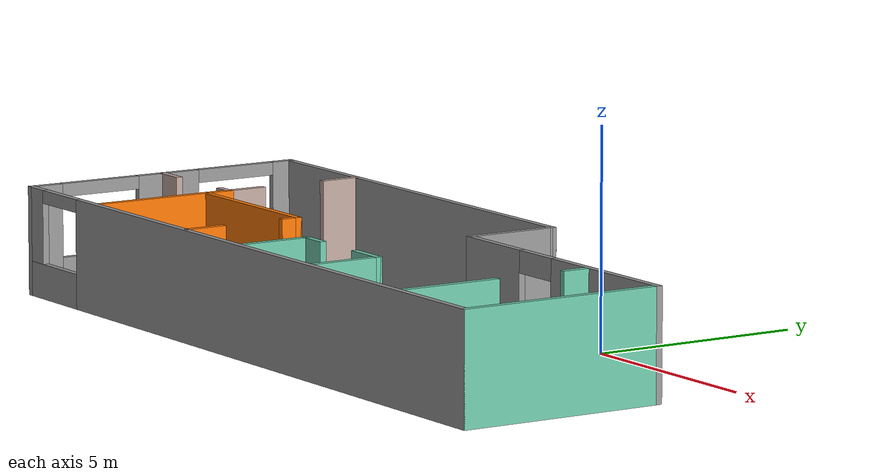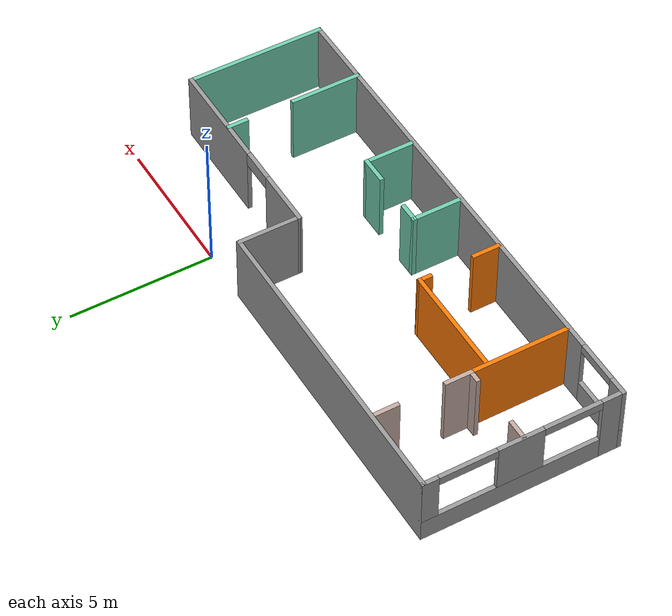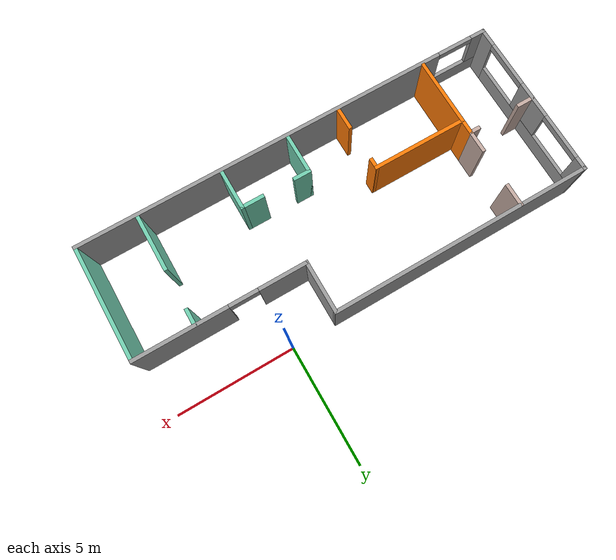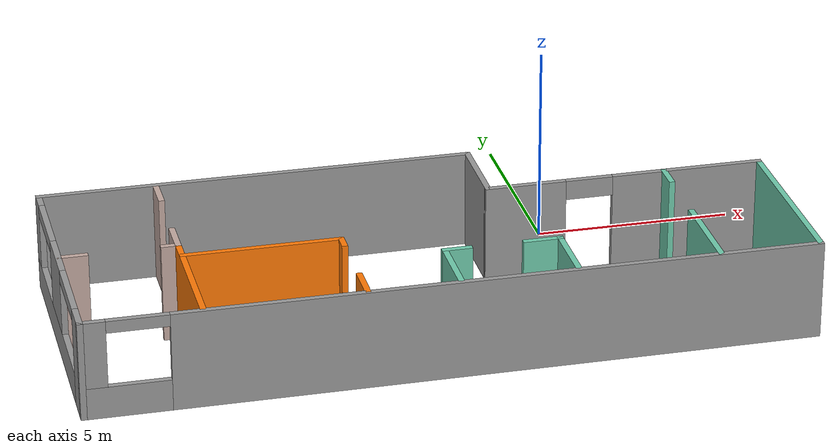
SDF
<?xml version='1.0'?>
<sdf version='1.6'>
  <model name='Building'>
    <pose frame=''>-3.82355 -3.43652 0 0 -0 0</pose>
    <link name='Wall_12'>
      <collision name='Wall_12_Collision'>
        <geometry>
          <box>
            <size>3.5 0.15 2.5</size>
          </box>
        </geometry>
        <pose frame=''>0 0 1.25 0 -0 0</pose>
      </collision>
      <visual name='Wall_12_Visual'>
        <pose frame=''>0 0 1.25 0 -0 0</pose>
        <geometry>
          <box>
            <size>3.5 0.15 2.5</size>
          </box>
        </geometry>
        <material>
          <script>
            <uri>file://media/materials/scripts/gazebo.material</uri>
            <name>Gazebo/Grey</name>
          </script>
          <ambient>0.996078 0.47451 0.0196078 1</ambient>
        </material>
        <meta>
          <layer>0</layer>
        </meta>
      </visual>
      <pose frame=''>-6.04441 -1.64552 0 0 0 -1.5708</pose>
    </link>
    <link name='Wall_16'>
      <collision name='Wall_16_Collision'>
        <geometry>
          <box>
            <size>11 0.15 2.5</size>
          </box>
        </geometry>
        <pose frame=''>0 0 1.25 0 -0 0</pose>
      </collision>
      <visual name='Wall_16_Visual'>
        <pose frame=''>0 0 1.25 0 -0 0</pose>
        <geometry>
          <box>
            <size>11 0.15 2.5</size>
          </box>
        </geometry>
        <material>
          <script>
            <uri>file://media/materials/scripts/gazebo.material</uri>
            <name>Gazebo/Grey</name>
          </script>
          <ambient>0.462745 0.490196 0.45098 1</ambient>
        </material>
        <meta>
          <layer>0</layer>
        </meta>
      </visual>
      <pose frame=''>-3.5 3.425 0 0 -0 0</pose>
    </link>
    <link name='Wall_17'>
      <collision name='Wall_17_Collision'>
        <geometry>
          <box>
            <size>2.25 0.15 2.5</size>
          </box>
        </geometry>
        <pose frame=''>0 0 1.25 0 -0 0</pose>
      </collision>
      <visual name='Wall_17_Visual'>
        <pose frame=''>0 0 1.25 0 -0 0</pose>
        <geometry>
          <box>
            <size>2.25 0.15 2.5</size>
          </box>
        </geometry>
        <material>
          <script>
            <uri>file://media/materials/scripts/gazebo.material</uri>
            <name>Gazebo/Grey</name>
          </script>
          <ambient>0.462745 0.490196 0.45098 1</ambient>
        </material>
        <meta>
          <layer>0</layer>
        </meta>
      </visual>
      <pose frame=''>1.92477 2.37476 0 0 0 -1.57101</pose>
    </link>
    <link name='Wall_18'>
      <pose frame=''>5.42455 1.32452 0 0 -0 0</pose>
      <visual name='Wall_18_Visual_0'>
        <pose frame=''>-2.54562 0 1.25 0 -0 0</pose>
        <geometry>
          <box>
            <size>2.05876 0.15 2.5</size>
          </box>
        </geometry>
        <material>
          <script>
            <uri>file://media/materials/scripts/gazebo.material</uri>
            <name>Gazebo/Grey</name>
          </script>
          <ambient>0.462745 0.490196 0.45098 1</ambient>
        </material>
        <meta>
          <layer>0</layer>
        </meta>
      </visual>
      <collision name='Wall_18_Collision_0'>
        <geometry>
          <box>
            <size>2.05876 0.15 2.5</size>
          </box>
        </geometry>
        <pose frame=''>-2.54562 0 1.25 0 -0 0</pose>
      </collision>
      <visual name='Wall_18_Visual_1'>
        <pose frame=''>1.62938 0 1.25 0 -0 0</pose>
        <geometry>
          <box>
            <size>3.89124 0.15 2.5</size>
          </box>
        </geometry>
        <material>
          <script>
            <uri>file://media/materials/scripts/gazebo.material</uri>
            <name>Gazebo/Grey</name>
          </script>
          <ambient>0.462745 0.490196 0.45098 1</ambient>
        </material>
        <meta>
          <layer>0</layer>
        </meta>
      </visual>
      <collision name='Wall_18_Collision_1'>
        <geometry>
          <box>
            <size>3.89124 0.15 2.5</size>
          </box>
        </geometry>
        <pose frame=''>1.62938 0 1.25 0 -0 0</pose>
      </collision>
      <visual name='Wall_18_Visual_2'>
        <pose frame=''>-0.916243 0 2.25 0 -0 0</pose>
        <geometry>
          <box>
            <size>1.2 0.15 0.5</size>
          </box>
        </geometry>
        <material>
          <script>
            <uri>file://media/materials/scripts/gazebo.material</uri>
            <name>Gazebo/Grey</name>
          </script>
          <ambient>0.462745 0.490196 0.45098 1</ambient>
        </material>
        <meta>
          <layer>0</layer>
        </meta>
      </visual>
      <collision name='Wall_18_Collision_2'>
        <geometry>
          <box>
            <size>1.2 0.15 0.5</size>
          </box>
        </geometry>
        <pose frame=''>-0.916243 0 2.25 0 -0 0</pose>
      </collision>
    </link>
    <link name='Wall_20'>
      <collision name='Wall_20_Collision'>
        <geometry>
          <box>
            <size>4 0.15 2.5</size>
          </box>
        </geometry>
        <pose frame=''>0 0 1.25 0 -0 0</pose>
      </collision>
      <visual name='Wall_20_Visual'>
        <pose frame=''>0 0 1.25 0 -0 0</pose>
        <geometry>
          <box>
            <size>4 0.15 2.5</size>
          </box>
        </geometry>
        <material>
          <script>
            <uri>file://media/materials/scripts/gazebo.material</uri>
            <name>Gazebo/Grey</name>
          </script>
          <ambient>0.996078 0.47451 0.0196078 1</ambient>
        </material>
        <meta>
          <layer>0</layer>
        </meta>
      </visual>
      <pose frame=''>-4.10848 -0.552329 0 0 -0 0</pose>
    </link>
    <link name='Wall_23'>
      <collision name='Wall_23_Collision'>
        <geometry>
          <box>
            <size>1.75 0.15 2.5</size>
          </box>
        </geometry>
        <pose frame=''>0 0 1.25 0 -0 0</pose>
      </collision>
      <visual name='Wall_23_Visual'>
        <pose frame=''>0 0 1.25 0 -0 0</pose>
        <geometry>
          <box>
            <size>1.75 0.15 2.5</size>
          </box>
        </geometry>
        <material>
          <script>
            <uri>file://media/materials/scripts/gazebo.material</uri>
            <name>Gazebo/Grey</name>
          </script>
          <ambient>0.435294 0.796078 0.67451 1</ambient>
        </material>
        <meta>
          <layer>0</layer>
        </meta>
      </visual>
      <pose frame=''>0.087622 -2.51323 0 0 0 -1.5708</pose>
    </link>
    <link name='Wall_32'>
      <collision name='Wall_32_Collision'>
        <geometry>
          <box>
            <size>2.5 0.15 2.5</size>
          </box>
        </geometry>
        <pose frame=''>0 0 1.25 0 -0 0</pose>
      </collision>
      <visual name='Wall_32_Visual'>
        <pose frame=''>0 0 1.25 0 -0 0</pose>
        <geometry>
          <box>
            <size>2.5 0.15 2.5</size>
          </box>
        </geometry>
        <material>
          <script>
            <uri>file://media/materials/scripts/gazebo.material</uri>
            <name>Gazebo/Grey</name>
          </script>
          <ambient>0.435294 0.796078 0.67451 1</ambient>
        </material>
        <meta>
          <layer>0</layer>
        </meta>
      </visual>
      <pose frame=''>6.4415 -2.22703 0 0 -0 1.5708</pose>
    </link>
    <link name='Wall_34'>
      <collision name='Wall_34_Collision'>
        <geometry>
          <box>
            <size>1.75 0.15 2.5</size>
          </box>
        </geometry>
        <pose frame=''>0 0 1.25 0 -0 0</pose>
      </collision>
      <visual name='Wall_34_Visual'>
        <pose frame=''>0 0 1.25 0 -0 0</pose>
        <geometry>
          <box>
            <size>1.75 0.15 2.5</size>
          </box>
        </geometry>
        <material>
          <script>
            <uri>file://media/materials/scripts/gazebo.material</uri>
            <name>Gazebo/Grey</name>
          </script>
          <ambient>0.435294 0.796078 0.67451 1</ambient>
        </material>
        <meta>
          <layer>0</layer>
        </meta>
      </visual>
      <pose frame=''>2.93762 -2.51323 0 0 0 -1.5708</pose>
    </link>
    <link name='Wall_36'>
      <collision name='Wall_36_Collision'>
        <geometry>
          <box>
            <size>0.75 0.15 2.5</size>
          </box>
        </geometry>
        <pose frame=''>0 0 1.25 0 -0 0</pose>
      </collision>
      <visual name='Wall_36_Visual'>
        <pose frame=''>0 0 1.25 0 -0 0</pose>
        <geometry>
          <box>
            <size>0.75 0.15 2.5</size>
          </box>
        </geometry>
        <material>
          <script>
            <uri>file://media/materials/scripts/gazebo.material</uri>
            <name>Gazebo/Grey</name>
          </script>
          <ambient>0.435294 0.796078 0.67451 1</ambient>
        </material>
        <meta>
          <layer>0</layer>
        </meta>
      </visual>
      <pose frame=''>6.45579 0.997622 0 0 -0 1.5708</pose>
    </link>
    <link name='Wall_38'>
      <collision name='Wall_38_Collision'>
        <geometry>
          <box>
            <size>0.75 0.15 2.5</size>
          </box>
        </geometry>
        <pose frame=''>0 0 1.25 0 -0 0</pose>
      </collision>
      <visual name='Wall_38_Visual'>
        <pose frame=''>0 0 1.25 0 -0 0</pose>
        <geometry>
          <box>
            <size>0.75 0.15 2.5</size>
          </box>
        </geometry>
        <material>
          <script>
            <uri>file://media/materials/scripts/gazebo.material</uri>
            <name>Gazebo/Grey</name>
          </script>
          <ambient>0.435294 0.796078 0.67451 1</ambient>
        </material>
        <meta>
          <layer>0</layer>
        </meta>
      </visual>
      <pose frame=''>0.387622 -1.71323 0 0 -0 0</pose>
    </link>
    <link name='Wall_40'>
      <collision name='Wall_40_Collision'>
        <geometry>
          <box>
            <size>1 0.15 2.5</size>
          </box>
        </geometry>
        <pose frame=''>0 0 1.25 0 -0 0</pose>
      </collision>
      <visual name='Wall_40_Visual'>
        <pose frame=''>0 0 1.25 0 -0 0</pose>
        <geometry>
          <box>
            <size>1 0.15 2.5</size>
          </box>
        </geometry>
        <material>
          <script>
            <uri>file://media/materials/scripts/gazebo.material</uri>
            <name>Gazebo/Grey</name>
          </script>
          <ambient>0.435294 0.796078 0.67451 1</ambient>
        </material>
        <meta>
          <layer>0</layer>
        </meta>
      </visual>
      <pose frame=''>2.51262 -1.71323 0 0 -0 3.14159</pose>
    </link>
    <link name='Wall_43'>
      <collision name='Wall_43_Collision'>
        <geometry>
          <box>
            <size>0.5 0.15 2.5</size>
          </box>
        </geometry>
        <pose frame=''>0 0 1.25 0 -0 0</pose>
      </collision>
      <visual name='Wall_43_Visual'>
        <pose frame=''>0 0 1.25 0 -0 0</pose>
        <geometry>
          <box>
            <size>0.5 0.15 2.5</size>
          </box>
        </geometry>
        <material>
          <script>
            <uri>file://media/materials/scripts/gazebo.material</uri>
            <name>Gazebo/Grey</name>
          </script>
          <ambient>0.996078 0.47451 0.0196078 1</ambient>
        </material>
        <meta>
          <layer>0</layer>
        </meta>
      </visual>
      <pose frame=''>-2.18348 -0.727329 0 0 0 -1.5708</pose>
    </link>
    <link name='Wall_45'>
      <collision name='Wall_45_Collision'>
        <geometry>
          <box>
            <size>1 0.15 2.5</size>
          </box>
        </geometry>
        <pose frame=''>0 0 1.25 0 -0 0</pose>
      </collision>
      <visual name='Wall_45_Visual'>
        <pose frame=''>0 0 1.25 0 -0 0</pose>
        <geometry>
          <box>
            <size>1 0.15 2.5</size>
          </box>
        </geometry>
        <material>
          <script>
            <uri>file://media/materials/scripts/gazebo.material</uri>
            <name>Gazebo/Grey</name>
          </script>
          <ambient>0.996078 0.47451 0.0196078 1</ambient>
        </material>
        <meta>
          <layer>0</layer>
        </meta>
      </visual>
      <pose frame=''>-2.16345 -2.92927 0 0 0 -1.5708</pose>
    </link>
    <link name='Wall_47'>
      <collision name='Wall_47_Collision'>
        <geometry>
          <box>
            <size>0.5 0.15 2.5</size>
          </box>
        </geometry>
        <pose frame=''>0 0 1.25 0 -0 0</pose>
      </collision>
      <visual name='Wall_47_Visual'>
        <pose frame=''>0 0 1.25 0 -0 0</pose>
        <geometry>
          <box>
            <size>0.5 0.15 2.5</size>
          </box>
        </geometry>
        <material>
          <script>
            <uri>file://media/materials/scripts/gazebo.material</uri>
            <name>Gazebo/Grey</name>
          </script>
          <ambient>0.760784 0.662745 0.627451 1</ambient>
        </material>
        <meta>
          <layer>0</layer>
        </meta>
      </visual>
      <pose frame=''>-6.21941 0.029484 0 0 -0 3.14159</pose>
    </link>
    <link name='Wall_49'>
      <collision name='Wall_49_Collision'>
        <geometry>
          <box>
            <size>0.75 0.15 2.5</size>
          </box>
        </geometry>
        <pose frame=''>0 0 1.25 0 -0 0</pose>
      </collision>
      <visual name='Wall_49_Visual'>
        <pose frame=''>0 0 1.25 0 -0 0</pose>
        <geometry>
          <box>
            <size>0.75 0.15 2.5</size>
          </box>
        </geometry>
        <material>
          <script>
            <uri>file://media/materials/scripts/gazebo.material</uri>
            <name>Gazebo/Grey</name>
          </script>
          <ambient>0.760784 0.662745 0.627451 1</ambient>
        </material>
        <meta>
          <layer>0</layer>
        </meta>
      </visual>
      <pose frame=''>-8.58628 0.017111 0 0 -0 3.14159</pose>
    </link>
    <link name='Wall_51'>
      <collision name='Wall_51_Collision'>
        <geometry>
          <box>
            <size>1 0.15 2.5</size>
          </box>
        </geometry>
        <pose frame=''>0 0 1.25 0 -0 0</pose>
      </collision>
      <visual name='Wall_51_Visual'>
        <pose frame=''>0 0 1.25 0 -0 0</pose>
        <geometry>
          <box>
            <size>1 0.15 2.5</size>
          </box>
        </geometry>
        <material>
          <script>
            <uri>file://media/materials/scripts/gazebo.material</uri>
            <name>Gazebo/Grey</name>
          </script>
          <ambient>0.760784 0.662745 0.627451 1</ambient>
        </material>
        <meta>
          <layer>0</layer>
        </meta>
      </visual>
      <pose frame=''>-6.04441 0.454485 0 0 -0 1.5708</pose>
    </link>
    <link name='Wall_55'>
      <collision name='Wall_55_Collision'>
        <geometry>
          <box>
            <size>1 0.15 2.5</size>
          </box>
        </geometry>
        <pose frame=''>0 0 1.25 0 -0 0</pose>
      </collision>
      <visual name='Wall_55_Visual'>
        <pose frame=''>0 0 1.25 0 -0 0</pose>
        <geometry>
          <box>
            <size>1 0.15 2.5</size>
          </box>
        </geometry>
        <material>
          <script>
            <uri>file://media/materials/scripts/gazebo.material</uri>
            <name>Gazebo/Grey</name>
          </script>
          <ambient>0.760784 0.662745 0.627451 1</ambient>
        </material>
        <meta>
          <layer>0</layer>
        </meta>
      </visual>
      <pose frame=''>-6.02797 2.98846 0 0 0 -1.5708</pose>
    </link>
    <link name='Wall_6'>
      <collision name='Wall_6_Collision'>
        <geometry>
          <box>
            <size>4.75 0.15 2.5</size>
          </box>
        </geometry>
        <pose frame=''>0 0 1.25 0 -0 0</pose>
      </collision>
      <visual name='Wall_6_Visual'>
        <pose frame=''>0 0 1.25 0 -0 0</pose>
        <geometry>
          <box>
            <size>4.75 0.15 2.5</size>
          </box>
        </geometry>
        <material>
          <script>
            <uri>file://media/materials/scripts/gazebo.material</uri>
            <name>Gazebo/Grey</name>
          </script>
          <ambient>0.435294 0.796078 0.67451 1</ambient>
        </material>
        <meta>
          <layer>0</layer>
        </meta>
      </visual>
      <pose frame=''>8.925 -1.125 0 0 0 -1.5708</pose>
    </link>
    <link name='Wall_8'>
      <pose frame=''>0 -3.425 0 0 -0 3.14159</pose>
      <visual name='Wall_8_Visual_0'>
        <pose frame=''>-1.08419 0 1.25 0 -0 0</pose>
        <geometry>
          <box>
            <size>15.8316 0.15 2.5</size>
          </box>
        </geometry>
        <material>
          <script>
            <uri>file://media/materials/scripts/gazebo.material</uri>
            <name>Gazebo/Grey</name>
          </script>
          <ambient>0.462745 0.490196 0.45098 1</ambient>
        </material>
        <meta>
          <layer>0</layer>
        </meta>
      </visual>
      <collision name='Wall_8_Collision_0'>
        <geometry>
          <box>
            <size>15.8316 0.15 2.5</size>
          </box>
        </geometry>
        <pose frame=''>-1.08419 0 1.25 0 -0 0</pose>
      </collision>
      <visual name='Wall_8_Visual_1'>
        <pose frame=''>7.91581 0 0.4 0 -0 0</pose>
        <geometry>
          <box>
            <size>2.16839 0.15 0.8</size>
          </box>
        </geometry>
        <material>
          <script>
            <uri>file://media/materials/scripts/gazebo.material</uri>
            <name>Gazebo/Grey</name>
          </script>
          <ambient>0.462745 0.490196 0.45098 1</ambient>
        </material>
        <meta>
          <layer>0</layer>
        </meta>
      </visual>
      <collision name='Wall_8_Collision_1'>
        <geometry>
          <box>
            <size>2.16839 0.15 0.8</size>
          </box>
        </geometry>
        <pose frame=''>7.91581 0 0.4 0 -0 0</pose>
      </collision>
      <visual name='Wall_8_Visual_2'>
        <pose frame=''>8.66581 0 1.65 0 -0 0</pose>
        <geometry>
          <box>
            <size>0.668389 0.15 1.7</size>
          </box>
        </geometry>
        <material>
          <script>
            <uri>file://media/materials/scripts/gazebo.material</uri>
            <name>Gazebo/Grey</name>
          </script>
          <ambient>0.462745 0.490196 0.45098 1</ambient>
        </material>
        <meta>
          <layer>0</layer>
        </meta>
      </visual>
      <collision name='Wall_8_Collision_2'>
        <geometry>
          <box>
            <size>0.668389 0.15 1.7</size>
          </box>
        </geometry>
        <pose frame=''>8.66581 0 1.65 0 -0 0</pose>
      </collision>
      <visual name='Wall_8_Visual_3'>
        <pose frame=''>7.58161 0 2.35 0 -0 0</pose>
        <geometry>
          <box>
            <size>1.5 0.15 0.3</size>
          </box>
        </geometry>
        <material>
          <script>
            <uri>file://media/materials/scripts/gazebo.material</uri>
            <name>Gazebo/Grey</name>
          </script>
          <ambient>0.462745 0.490196 0.45098 1</ambient>
        </material>
        <meta>
          <layer>0</layer>
        </meta>
      </visual>
      <collision name='Wall_8_Collision_3'>
        <geometry>
          <box>
            <size>1.5 0.15 0.3</size>
          </box>
        </geometry>
        <pose frame=''>7.58161 0 2.35 0 -0 0</pose>
      </collision>
    </link>
    <link name='Wall_9'>
      <pose frame=''>-8.925 0 0 0 -0 1.5708</pose>
      <visual name='Wall_9_Visual_0'>
        <pose frame=''>-3.09367 0 1.25 0 -0 0</pose>
        <geometry>
          <box>
            <size>0.812669 0.15 2.5</size>
          </box>
        </geometry>
        <material>
          <script>
            <uri>file://media/materials/scripts/gazebo.material</uri>
            <name>Gazebo/Grey</name>
          </script>
          <ambient>0.462745 0.490196 0.45098 1</ambient>
        </material>
        <meta>
          <layer>0</layer>
        </meta>
      </visual>
      <collision name='Wall_9_Collision_0'>
        <geometry>
          <box>
            <size>0.812669 0.15 2.5</size>
          </box>
        </geometry>
        <pose frame=''>-3.09367 0 1.25 0 -0 0</pose>
      </collision>
      <visual name='Wall_9_Visual_1'>
        <pose frame=''>0.406335 0 0.4 0 -0 0</pose>
        <geometry>
          <box>
            <size>6.18733 0.15 0.8</size>
          </box>
        </geometry>
        <material>
          <script>
            <uri>file://media/materials/scripts/gazebo.material</uri>
            <name>Gazebo/Grey</name>
          </script>
          <ambient>0.462745 0.490196 0.45098 1</ambient>
        </material>
        <meta>
          <layer>0</layer>
        </meta>
      </visual>
      <collision name='Wall_9_Collision_1'>
        <geometry>
          <box>
            <size>6.18733 0.15 0.8</size>
          </box>
        </geometry>
        <pose frame=''>0.406335 0 0.4 0 -0 0</pose>
      </collision>
      <visual name='Wall_9_Visual_2'>
        <pose frame=''>0.115345 0 1.65 0 -0 0</pose>
        <geometry>
          <box>
            <size>1.60535 0.15 1.7</size>
          </box>
        </geometry>
        <material>
          <script>
            <uri>file://media/materials/scripts/gazebo.material</uri>
            <name>Gazebo/Grey</name>
          </script>
          <ambient>0.462745 0.490196 0.45098 1</ambient>
        </material>
        <meta>
          <layer>0</layer>
        </meta>
      </visual>
      <collision name='Wall_9_Collision_2'>
        <geometry>
          <box>
            <size>1.60535 0.15 1.7</size>
          </box>
        </geometry>
        <pose frame=''>0.115345 0 1.65 0 -0 0</pose>
      </collision>
      <visual name='Wall_9_Visual_3'>
        <pose frame=''>3.20901 0 1.65 0 -0 0</pose>
        <geometry>
          <box>
            <size>0.581978 0.15 1.7</size>
          </box>
        </geometry>
        <material>
          <script>
            <uri>file://media/materials/scripts/gazebo.material</uri>
            <name>Gazebo/Grey</name>
          </script>
          <ambient>0.462745 0.490196 0.45098 1</ambient>
        </material>
        <meta>
          <layer>0</layer>
        </meta>
      </visual>
      <collision name='Wall_9_Collision_3'>
        <geometry>
          <box>
            <size>0.581978 0.15 1.7</size>
          </box>
        </geometry>
        <pose frame=''>3.20901 0 1.65 0 -0 0</pose>
      </collision>
      <visual name='Wall_9_Visual_4'>
        <pose frame=''>-1.68733 0 2.35 0 -0 0</pose>
        <geometry>
          <box>
            <size>2 0.15 0.3</size>
          </box>
        </geometry>
        <material>
          <script>
            <uri>file://media/materials/scripts/gazebo.material</uri>
            <name>Gazebo/Grey</name>
          </script>
          <ambient>0.462745 0.490196 0.45098 1</ambient>
        </material>
        <meta>
          <layer>0</layer>
        </meta>
      </visual>
      <collision name='Wall_9_Collision_4'>
        <geometry>
          <box>
            <size>2 0.15 0.3</size>
          </box>
        </geometry>
        <pose frame=''>-1.68733 0 2.35 0 -0 0</pose>
      </collision>
      <visual name='Wall_9_Visual_5'>
        <pose frame=''>1.91802 0 2.35 0 -0 0</pose>
        <geometry>
          <box>
            <size>2 0.15 0.3</size>
          </box>
        </geometry>
        <material>
          <script>
            <uri>file://media/materials/scripts/gazebo.material</uri>
            <name>Gazebo/Grey</name>
          </script>
          <ambient>0.462745 0.490196 0.45098 1</ambient>
        </material>
        <meta>
          <layer>0</layer>
        </meta>
      </visual>
      <collision name='Wall_9_Collision_5'>
        <geometry>
          <box>
            <size>2 0.15 0.3</size>
          </box>
        </geometry>
        <pose frame=''>1.91802 0 2.35 0 -0 0</pose>
      </collision>
    </link>
    <static>1</static>
  </model>
</sdf>
